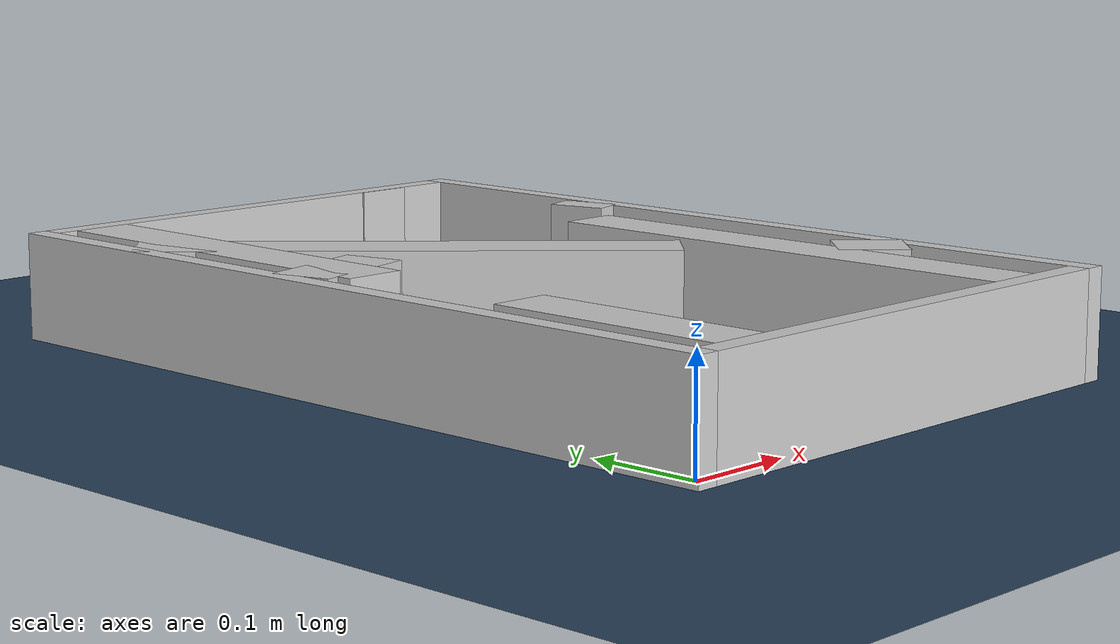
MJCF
<?xml version="1.0" ?>
<mujoco model="generated_real_template">
  <compiler angle="degree"/>
  <option timestep="0.002" integrator="implicitfast" iterations="100" cone="elliptic"/>
  <default>
    <geom density="1"/>
  </default>
  <asset>
    <texture builtin="gradient" height="3072" rgb1="0.3 0.5 0.7" rgb2="0 0 0" type="skybox" width="512"/>
    <texture builtin="checker" height="300" mark="edge" markrgb="0.8 0.8 0.8" name="groundplane" rgb1="0.2 0.3 0.4" rgb2="0.1 0.2 0.3" type="2d" width="300"/>
    <material name="groundplane" reflectance="0.2" texrepeat="5 5" texture="groundplane" texuniform="true"/>
  </asset>
  <worldbody>
    <light dir="0 0 -1" directional="true" pos="0 0 1.5"/>
    <geom name="floor" type="plane" condim="4" friction="0.5 0.005 0.001" material="groundplane" size="0 0 0.05"/>
    <body name="walls">
      <geom name="wall_boundary_left" type="box" condim="4" friction="1.0 0.005 0.0001" rgba="0.8 0.8 0.8 1" pos="-0.010000 0.387500 0.050000" euler="0 0 0.000000" size="0.010000 0.407500 0.050000"/>
      <geom name="wall_boundary_right" type="box" condim="4" friction="1.0 0.005 0.0001" rgba="0.8 0.8 0.8 1" pos="0.500000 0.387500 0.050000" euler="0 0 0.000000" size="0.010000 0.407500 0.050000"/>
      <geom name="wall_boundary_bottom" type="box" condim="4" friction="1.0 0.005 0.0001" rgba="0.8 0.8 0.8 1" pos="0.245000 -0.010000 0.050000" euler="0 0 0.000000" size="0.245000 0.010000 0.050000"/>
      <geom name="wall_boundary_top" type="box" condim="4" friction="1.0 0.005 0.0001" rgba="0.8 0.8 0.8 1" pos="0.245000 0.785000 0.050000" euler="0 0 0.000000" size="0.245000 0.010000 0.050000"/>
      <geom name="wall_inner_1_1" type="box" condim="4" friction="1.0 0.005 0.0001" rgba="0.8 0.8 0.8 1" pos="0.407604 0.242422 0.050000" euler="0 0 90.000000" size="0.242422 0.028500 0.050000"/>
      <geom name="wall_inner_1_2" type="box" condim="4" friction="1.0 0.005 0.0001" rgba="0.8 0.8 0.8 1" pos="0.407604 0.774216 0.050000" euler="0 0 90.000000" size="0.000784 0.028500 0.050000"/>
      <geom name="wall_inner_2_1" type="box" condim="4" friction="1.0 0.005 0.0001" rgba="0.8 0.8 0.8 1" pos="0.048950 0.113528 0.050000" euler="0 0 90.000000" size="0.113528 0.028500 0.050000"/>
      <geom name="wall_inner_2_2" type="box" condim="4" friction="1.0 0.005 0.0001" rgba="0.8 0.8 0.8 1" pos="0.048950 0.585516 0.050000" euler="0 0 90.000000" size="0.189484 0.028500 0.050000"/>
      <geom name="wall_inner_3_1" type="box" condim="4" friction="1.0 0.005 0.0001" rgba="0.8 0.8 0.8 1" pos="0.054161 0.448460 0.050000" euler="0 0 13.911213" size="0.055798 0.028500 0.050000"/>
      <geom name="wall_inner_3_2" type="box" condim="4" friction="1.0 0.005 0.0001" rgba="0.8 0.8 0.8 1" pos="0.474612 0.552599 0.050000" euler="0 0 13.911213" size="0.015853 0.028500 0.050000"/>
      <geom name="wall_inner_4_1" type="box" condim="4" friction="1.0 0.005 0.0001" rgba="0.8 0.8 0.8 1" pos="0.466685 0.192941 0.050000" euler="0 0 134.962389" size="0.032758 0.028500 0.050000"/>
      <geom name="wall_inner_4_2" type="box" condim="4" friction="1.0 0.005 0.0001" rgba="0.8 0.8 0.8 1" pos="0.173330 0.486681 0.050000" euler="0 0 134.962389" size="0.245051 0.028500 0.050000"/>
    </body>
  </worldbody>
</mujoco>
